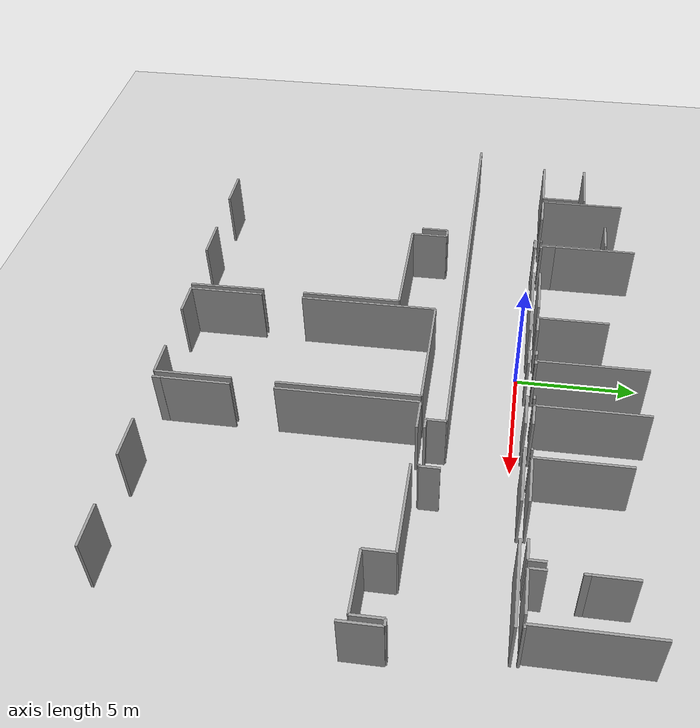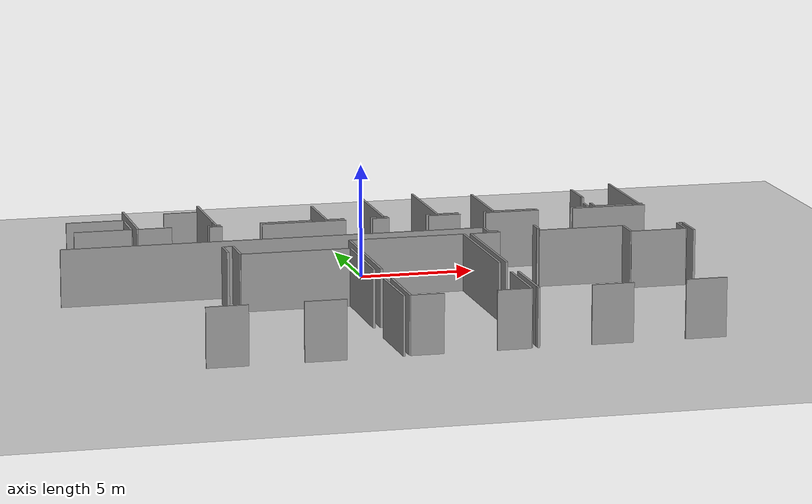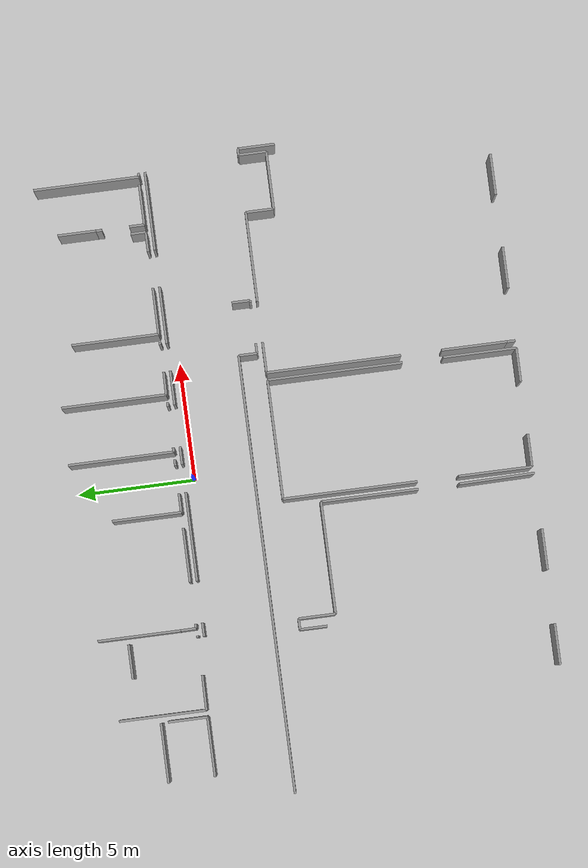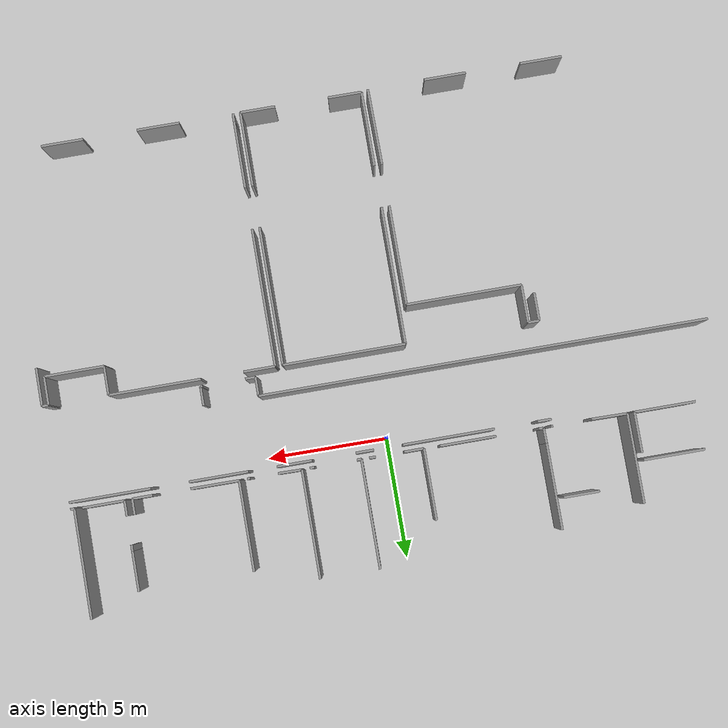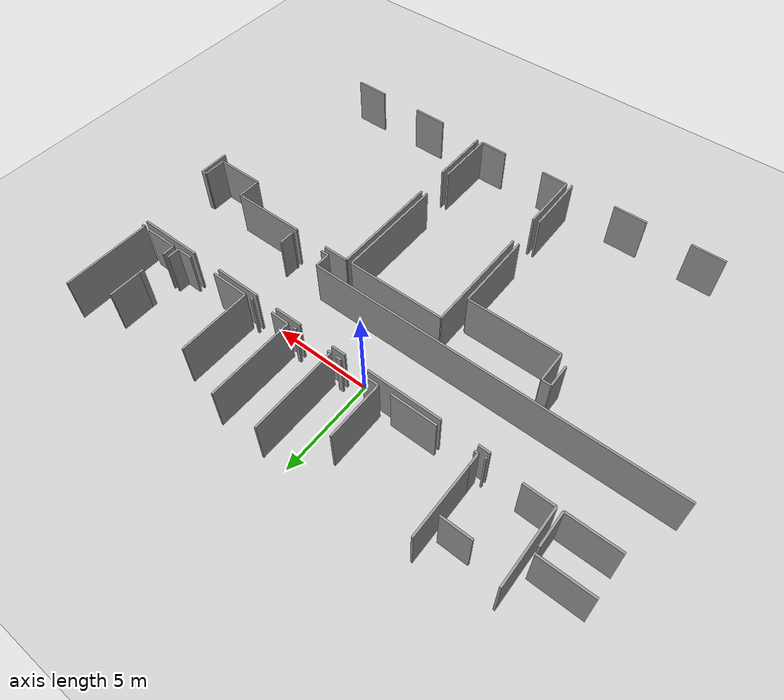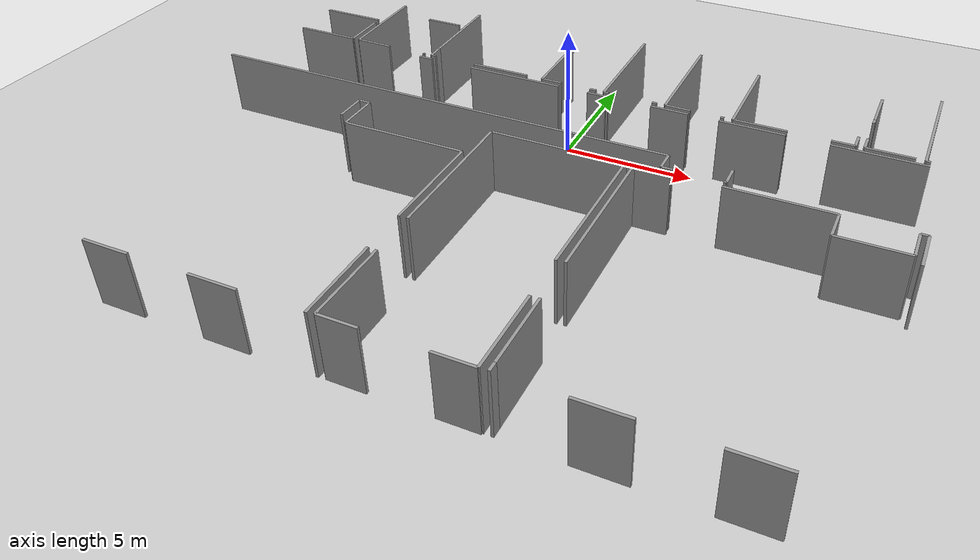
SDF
<sdf version="1.6">
 <world name="default">
  <model name="ground_plane">
   <static>1</static>
   <link name="link">
    <collision name="collision">
     <geometry><plane><normal>0 0 1</normal><size>100 100</size></plane></geometry>
     <surface><friction><ode><mu>100</mu><mu2>50</mu2></ode></friction></surface>
    </collision>
    <visual name="visual">
     <cast_shadows>0</cast_shadows>
     <geometry><plane><normal>0 0 1</normal><size>100 100</size></plane></geometry>
     <material>
      <script><uri>file://media/materials/scripts/gazebo.material</uri><name>Gazebo/Grey</name></script>
     </material>
    </visual>
   </link>
  </model>
  <model name="0510032268_A_40_1_102">
   <static>1</static>
   <link name="Wall_148">
    <collision name="Wall_148_Collision">
     <geometry><box><size>0.570935244492 0.1 2.5</size></box></geometry>
     <pose>0.285467622246 0 1.25 0 0 0</pose>
    </collision>
    <visual name="Wall_148_Visual">
     <pose>0.285467622246 0 1.25 0 0 0</pose>
     <geometry><box><size>0.570935244492 0.1 2.5</size></box></geometry>
     <material>
      <script><uri>file://media/materials/scripts/gazebo.material</uri><name>Gazebo/Grey</name></script>
      <ambient>1 1 1 1</ambient>
     </material>
    </visual>
    <pose>41.2171572579 -14.3330519072 0 0 0 0.0</pose>
   </link>
   <link name="Wall_149">
    <collision name="Wall_149_Collision">
     <geometry><box><size>3.76091055094 0.1 2.5</size></box></geometry>
     <pose>1.88045527547 0 1.25 0 0 0</pose>
    </collision>
    <visual name="Wall_149_Visual">
     <pose>1.88045527547 0 1.25 0 0 0</pose>
     <geometry><box><size>3.76091055094 0.1 2.5</size></box></geometry>
     <material>
      <script><uri>file://media/materials/scripts/gazebo.material</uri><name>Gazebo/Grey</name></script>
      <ambient>1 1 1 1</ambient>
     </material>
    </visual>
    <pose>43.5557445836 -14.3330519072 0 0 0 0.0</pose>
   </link>
   <link name="Wall_150">
    <collision name="Wall_150_Collision">
     <geometry><box><size>0.739790898299 0.1 2.5</size></box></geometry>
     <pose>0.36989544915 0 1.25 0 0 0</pose>
    </collision>
    <visual name="Wall_150_Visual">
     <pose>0.36989544915 0 1.25 0 0 0</pose>
     <geometry><box><size>0.739790898299 0.1 2.5</size></box></geometry>
     <material>
      <script><uri>file://media/materials/scripts/gazebo.material</uri><name>Gazebo/Grey</name></script>
      <ambient>1 1 1 1</ambient>
     </material>
    </visual>
    <pose>48.5146415626 -14.3330519072 0 0 0 0.0</pose>
   </link>
   <link name="Wall_151">
    <collision name="Wall_151_Collision">
     <geometry><box><size>1.44428715618 0.1 2.5</size></box></geometry>
     <pose>0.722143578089 0 1.25 0 0 0</pose>
    </collision>
    <visual name="Wall_151_Visual">
     <pose>0.722143578089 0 1.25 0 0 0</pose>
     <geometry><box><size>1.44428715618 0.1 2.5</size></box></geometry>
     <material>
      <script><uri>file://media/materials/scripts/gazebo.material</uri><name>Gazebo/Grey</name></script>
      <ambient>1 1 1 1</ambient>
     </material>
    </visual>
    <pose>51.044937187 -14.3330519072 0 0 0 0.0</pose>
   </link>
   <link name="Wall_152">
    <collision name="Wall_152_Collision">
     <geometry><box><size>2.43190229225 0.1 2.5</size></box></geometry>
     <pose>1.21595114612 0 1.25 0 0 0</pose>
    </collision>
    <visual name="Wall_152_Visual">
     <pose>1.21595114612 0 1.25 0 0 0</pose>
     <geometry><box><size>2.43190229225 0.1 2.5</size></box></geometry>
     <material>
      <script><uri>file://media/materials/scripts/gazebo.material</uri><name>Gazebo/Grey</name></script>
      <ambient>1 1 1 1</ambient>
     </material>
    </visual>
    <pose>53.6487421523 -14.3330519072 0 0 0 0.0</pose>
   </link>
   <link name="Wall_153">
    <collision name="Wall_153_Collision">
     <geometry><box><size>3.33813662073 0.1 2.5</size></box></geometry>
     <pose>1.66906831036 0 1.25 0 0 0</pose>
    </collision>
    <visual name="Wall_153_Visual">
     <pose>1.66906831036 0 1.25 0 0 0</pose>
     <geometry><box><size>3.33813662073 0.1 2.5</size></box></geometry>
     <material>
      <script><uri>file://media/materials/scripts/gazebo.material</uri><name>Gazebo/Grey</name></script>
      <ambient>1 1 1 1</ambient>
     </material>
    </visual>
    <pose>57.6432575176 -14.3330519072 0 0 0 0.0</pose>
   </link>
   <link name="Wall_160">
    <collision name="Wall_160_Collision">
     <geometry><box><size>0.784861392361 0.1 2.5</size></box></geometry>
     <pose>0.39243069618 0 1.25 0 0 0</pose>
    </collision>
    <visual name="Wall_160_Visual">
     <pose>0.39243069618 0 1.25 0 0 0</pose>
     <geometry><box><size>0.784861392361 0.1 2.5</size></box></geometry>
     <material>
      <script><uri>file://media/materials/scripts/gazebo.material</uri><name>Gazebo/Grey</name></script>
      <ambient>1 1 1 1</ambient>
     </material>
    </visual>
    <pose>55.0084745225 -17.2703785287 0 0 0 -1.57079632679</pose>
   </link>
   <link name="Wall_161">
    <collision name="Wall_161_Collision">
     <geometry><box><size>0.0886174784645 0.1 2.5</size></box></geometry>
     <pose>0.0443087392323 0 1.25 0 0 0</pose>
    </collision>
    <visual name="Wall_161_Visual">
     <pose>0.0443087392323 0 1.25 0 0 0</pose>
     <geometry><box><size>0.0886174784645 0.1 2.5</size></box></geometry>
     <material>
      <script><uri>file://media/materials/scripts/gazebo.material</uri><name>Gazebo/Grey</name></script>
      <ambient>1 1 1 1</ambient>
     </material>
    </visual>
    <pose>55.0084745225 -18.055239921 0 0 0 3.14159265359</pose>
   </link>
   <link name="Wall_162">
    <collision name="Wall_162_Collision">
     <geometry><box><size>0.422646971072 0.1 2.5</size></box></geometry>
     <pose>0.211323485536 0 1.25 0 0 0</pose>
    </collision>
    <visual name="Wall_162_Visual">
     <pose>0.211323485536 0 1.25 0 0 0</pose>
     <geometry><box><size>0.422646971072 0.1 2.5</size></box></geometry>
     <material>
      <script><uri>file://media/materials/scripts/gazebo.material</uri><name>Gazebo/Grey</name></script>
      <ambient>1 1 1 1</ambient>
     </material>
    </visual>
    <pose>53.1717566701 -18.055239921 0 0 0 3.14159265359</pose>
   </link>
   <link name="Wall_163">
    <collision name="Wall_163_Collision">
     <geometry><box><size>0.7806717408 0.1 2.5</size></box></geometry>
     <pose>0.3903358704 0 1.25 0 0 0</pose>
    </collision>
    <visual name="Wall_163_Visual">
     <pose>0.3903358704 0 1.25 0 0 0</pose>
     <geometry><box><size>0.7806717408 0.1 2.5</size></box></geometry>
     <material>
      <script><uri>file://media/materials/scripts/gazebo.material</uri><name>Gazebo/Grey</name></script>
      <ambient>1 1 1 1</ambient>
     </material>
    </visual>
    <pose>52.749109699 -18.055239921 0 0 0 1.57079632679</pose>
   </link>
   <link name="Wall_164">
    <collision name="Wall_164_Collision">
     <geometry><box><size>18.5437786848 0.1 2.5</size></box></geometry>
     <pose>9.27188934242 0 1.25 0 0 0</pose>
    </collision>
    <visual name="Wall_164_Visual">
     <pose>9.27188934242 0 1.25 0 0 0</pose>
     <geometry><box><size>18.5437786848 0.1 2.5</size></box></geometry>
     <material>
      <script><uri>file://media/materials/scripts/gazebo.material</uri><name>Gazebo/Grey</name></script>
      <ambient>1 1 1 1</ambient>
     </material>
    </visual>
    <pose>52.749109699 -17.2745681802 0 0 0 3.14159265359</pose>
   </link>
   <link name="Wall_206">
    <collision name="Wall_206_Collision">
     <geometry><box><size>2.51937713847 0.1 2.5</size></box></geometry>
     <pose>1.25968856923 0 1.25 0 0 0</pose>
    </collision>
    <visual name="Wall_206_Visual">
     <pose>1.25968856923 0 1.25 0 0 0</pose>
     <geometry><box><size>2.51937713847 0.1 2.5</size></box></geometry>
     <material>
      <script><uri>file://media/materials/scripts/gazebo.material</uri><name>Gazebo/Grey</name></script>
      <ambient>1 1 1 1</ambient>
     </material>
    </visual>
    <pose>37.8306492056 -12.0821933461 0 0 0 3.14159265359</pose>
   </link>
   <link name="Wall_212">
    <collision name="Wall_212_Collision">
     <geometry><box><size>1.66379950613 0.1 2.5</size></box></geometry>
     <pose>0.831899753064 0 1.25 0 0 0</pose>
    </collision>
    <visual name="Wall_212_Visual">
     <pose>0.831899753064 0 1.25 0 0 0</pose>
     <geometry><box><size>1.66379950613 0.1 2.5</size></box></geometry>
     <material>
      <script><uri>file://media/materials/scripts/gazebo.material</uri><name>Gazebo/Grey</name></script>
      <ambient>1 1 1 1</ambient>
     </material>
    </visual>
    <pose>37.8472808527 -12.3790238112 0 0 0 -1.57079632679</pose>
   </link>
   <link name="Wall_213">
    <collision name="Wall_213_Collision">
     <geometry><box><size>2.51950409761 0.1 2.5</size></box></geometry>
     <pose>1.2597520488 0 1.25 0 0 0</pose>
    </collision>
    <visual name="Wall_213_Visual">
     <pose>1.2597520488 0 1.25 0 0 0</pose>
     <geometry><box><size>2.51950409761 0.1 2.5</size></box></geometry>
     <material>
      <script><uri>file://media/materials/scripts/gazebo.material</uri><name>Gazebo/Grey</name></script>
      <ambient>1 1 1 1</ambient>
     </material>
    </visual>
    <pose>37.8472808527 -14.0428233173 0 0 0 3.14159265359</pose>
   </link>
   <link name="Wall_219">
    <collision name="Wall_219_Collision">
     <geometry><box><size>1.74467247716 0.1 2.5</size></box></geometry>
     <pose>0.872336238582 0 1.25 0 0 0</pose>
    </collision>
    <visual name="Wall_219_Visual">
     <pose>0.872336238582 0 1.25 0 0 0</pose>
     <geometry><box><size>1.74467247716 0.1 2.5</size></box></geometry>
     <material>
      <script><uri>file://media/materials/scripts/gazebo.material</uri><name>Gazebo/Grey</name></script>
      <ambient>1 1 1 1</ambient>
     </material>
    </visual>
    <pose>43.8768242441 -28.9878182707 0 0 0 3.14159265359</pose>
   </link>
   <link name="Wall_220">
    <collision name="Wall_220_Collision">
     <geometry><box><size>1.74467247716 0.1 2.5</size></box></geometry>
     <pose>0.872336238582 0 1.25 0 0 0</pose>
    </collision>
    <visual name="Wall_220_Visual">
     <pose>0.872336238582 0 1.25 0 0 0</pose>
     <geometry><box><size>1.74467247716 0.1 2.5</size></box></geometry>
     <material>
      <script><uri>file://media/materials/scripts/gazebo.material</uri><name>Gazebo/Grey</name></script>
      <ambient>1 1 1 1</ambient>
     </material>
    </visual>
    <pose>39.8614875802 -28.9878182707 0 0 0 3.14159265359</pose>
   </link>
   <link name="Wall_228">
    <collision name="Wall_228_Collision">
     <geometry><box><size>1.16142219627 0.1 2.5</size></box></geometry>
     <pose>0.580711098133 0 1.25 0 0 0</pose>
    </collision>
    <visual name="Wall_228_Visual">
     <pose>0.580711098133 0 1.25 0 0 0</pose>
     <geometry><box><size>1.16142219627 0.1 2.5</size></box></geometry>
     <material>
      <script><uri>file://media/materials/scripts/gazebo.material</uri><name>Gazebo/Grey</name></script>
      <ambient>1 1 1 1</ambient>
     </material>
    </visual>
    <pose>40.9852029124 -19.5207292533 0 0 0 1.57079632679</pose>
   </link>
   <link name="Wall_229">
    <collision name="Wall_229_Collision">
     <geometry><box><size>0.457306815801 0.1 2.5</size></box></geometry>
     <pose>0.228653407901 0 1.25 0 0 0</pose>
    </collision>
    <visual name="Wall_229_Visual">
     <pose>0.228653407901 0 1.25 0 0 0</pose>
     <geometry><box><size>0.457306815801 0.1 2.5</size></box></geometry>
     <material>
      <script><uri>file://media/materials/scripts/gazebo.material</uri><name>Gazebo/Grey</name></script>
      <ambient>1 1 1 1</ambient>
     </material>
    </visual>
    <pose>40.9852029124 -18.359307057 0 0 0 0.0</pose>
   </link>
   <link name="Wall_230">
    <collision name="Wall_230_Collision">
     <geometry><box><size>1.56794535679 0.1 2.5</size></box></geometry>
     <pose>0.783972678393 0 1.25 0 0 0</pose>
    </collision>
    <visual name="Wall_230_Visual">
     <pose>0.783972678393 0 1.25 0 0 0</pose>
     <geometry><box><size>1.56794535679 0.1 2.5</size></box></geometry>
     <material>
      <script><uri>file://media/materials/scripts/gazebo.material</uri><name>Gazebo/Grey</name></script>
      <ambient>1 1 1 1</ambient>
     </material>
    </visual>
    <pose>41.4425097282 -18.359307057 0 0 0 -1.57079632679</pose>
   </link>
   <link name="Wall_231">
    <collision name="Wall_231_Collision">
     <geometry><box><size>4.75461972564 0.1 2.5</size></box></geometry>
     <pose>2.37730986282 0 1.25 0 0 0</pose>
    </collision>
    <visual name="Wall_231_Visual">
     <pose>2.37730986282 0 1.25 0 0 0</pose>
     <geometry><box><size>4.75461972564 0.1 2.5</size></box></geometry>
     <material>
      <script><uri>file://media/materials/scripts/gazebo.material</uri><name>Gazebo/Grey</name></script>
      <ambient>1 1 1 1</ambient>
     </material>
    </visual>
    <pose>41.4425097282 -19.9272524138 0 0 0 0.0</pose>
   </link>
   <link name="Wall_232">
    <collision name="Wall_232_Collision">
     <geometry><box><size>4.13340866242 0.1 2.5</size></box></geometry>
     <pose>2.06670433121 0 1.25 0 0 0</pose>
    </collision>
    <visual name="Wall_232_Visual">
     <pose>2.06670433121 0 1.25 0 0 0</pose>
     <geometry><box><size>4.13340866242 0.1 2.5</size></box></geometry>
     <material>
      <script><uri>file://media/materials/scripts/gazebo.material</uri><name>Gazebo/Grey</name></script>
      <ambient>1 1 1 1</ambient>
     </material>
    </visual>
    <pose>46.1971294539 -19.9272524138 0 0 0 -1.57079632679</pose>
   </link>
   <link name="Wall_233">
    <collision name="Wall_233_Collision">
     <geometry><box><size>3.18720034093 0.1 2.5</size></box></geometry>
     <pose>1.59360017047 0 1.25 0 0 0</pose>
    </collision>
    <visual name="Wall_233_Visual">
     <pose>1.59360017047 0 1.25 0 0 0</pose>
     <geometry><box><size>3.18720034093 0.1 2.5</size></box></geometry>
     <material>
      <script><uri>file://media/materials/scripts/gazebo.material</uri><name>Gazebo/Grey</name></script>
      <ambient>1 1 1 1</ambient>
     </material>
    </visual>
    <pose>46.1971294539 -25.8008899836 0 0 0 -1.55773038247</pose>
   </link>
   <link name="Wall_234">
    <collision name="Wall_234_Collision">
     <geometry><box><size>3.1140537418 0.1 2.5</size></box></geometry>
     <pose>1.5570268709 0 1.25 0 0 0</pose>
    </collision>
    <visual name="Wall_234_Visual">
     <pose>1.5570268709 0 1.25 0 0 0</pose>
     <geometry><box><size>3.1140537418 0.1 2.5</size></box></geometry>
     <material>
      <script><uri>file://media/materials/scripts/gazebo.material</uri><name>Gazebo/Grey</name></script>
      <ambient>1 1 1 1</ambient>
     </material>
    </visual>
    <pose>46.5150351359 -28.9176098673 0 0 0 1.57079632679</pose>
   </link>
   <link name="Wall_235">
    <collision name="Wall_235_Collision">
     <geometry><box><size>5.70516279335 0.1 2.5</size></box></geometry>
     <pose>2.85258139668 0 1.25 0 0 0</pose>
    </collision>
    <visual name="Wall_235_Visual">
     <pose>2.85258139668 0 1.25 0 0 0</pose>
     <geometry><box><size>5.70516279335 0.1 2.5</size></box></geometry>
     <material>
      <script><uri>file://media/materials/scripts/gazebo.material</uri><name>Gazebo/Grey</name></script>
      <ambient>1 1 1 1</ambient>
     </material>
    </visual>
    <pose>46.5150351359 -24.0563444655 0 0 0 1.57079632679</pose>
   </link>
   <link name="Wall_236">
    <collision name="Wall_236_Collision">
     <geometry><box><size>5.06160692181 0.1 2.5</size></box></geometry>
     <pose>2.53080346091 0 1.25 0 0 0</pose>
    </collision>
    <visual name="Wall_236_Visual">
     <pose>2.53080346091 0 1.25 0 0 0</pose>
     <geometry><box><size>5.06160692181 0.1 2.5</size></box></geometry>
     <material>
      <script><uri>file://media/materials/scripts/gazebo.material</uri><name>Gazebo/Grey</name></script>
      <ambient>1 1 1 1</ambient>
     </material>
    </visual>
    <pose>46.5150351359 -18.3511816722 0 0 0 0.0</pose>
   </link>
   <link name="Wall_237">
    <collision name="Wall_237_Collision">
     <geometry><box><size>5.72903111134 0.1 2.5</size></box></geometry>
     <pose>2.86451555567 0 1.25 0 0 0</pose>
    </collision>
    <visual name="Wall_237_Visual">
     <pose>2.86451555567 0 1.25 0 0 0</pose>
     <geometry><box><size>5.72903111134 0.1 2.5</size></box></geometry>
     <material>
      <script><uri>file://media/materials/scripts/gazebo.material</uri><name>Gazebo/Grey</name></script>
      <ambient>1 1 1 1</ambient>
     </material>
    </visual>
    <pose>51.5766420578 -18.3511816722 0 0 0 -1.57079632679</pose>
   </link>
   <link name="Wall_238">
    <collision name="Wall_238_Collision">
     <geometry><box><size>3.10783274403 0.1 2.5</size></box></geometry>
     <pose>1.55391637202 0 1.25 0 0 0</pose>
    </collision>
    <visual name="Wall_238_Visual">
     <pose>1.55391637202 0 1.25 0 0 0</pose>
     <geometry><box><size>3.10783274403 0.1 2.5</size></box></geometry>
     <material>
      <script><uri>file://media/materials/scripts/gazebo.material</uri><name>Gazebo/Grey</name></script>
      <ambient>1 1 1 1</ambient>
     </material>
    </visual>
    <pose>51.5766420578 -25.8144746113 0 0 0 -1.57079632679</pose>
   </link>
   <link name="Wall_239">
    <collision name="Wall_239_Collision">
     <geometry><box><size>1.44479499273 0.1 2.5</size></box></geometry>
     <pose>0.722397496366 0 1.25 0 0 0</pose>
    </collision>
    <visual name="Wall_239_Visual">
     <pose>0.722397496366 0 1.25 0 0 0</pose>
     <geometry><box><size>1.44479499273 0.1 2.5</size></box></geometry>
     <material>
      <script><uri>file://media/materials/scripts/gazebo.material</uri><name>Gazebo/Grey</name></script>
      <ambient>1 1 1 1</ambient>
     </material>
    </visual>
    <pose>51.5766420578 -28.9223073554 0 0 0 3.14159265359</pose>
   </link>
   <link name="Wall_240">
    <collision name="Wall_240_Collision">
     <geometry><box><size>1.39617754525 0.1 2.5</size></box></geometry>
     <pose>0.698088772627 0 1.25 0 0 0</pose>
    </collision>
    <visual name="Wall_240_Visual">
     <pose>0.698088772627 0 1.25 0 0 0</pose>
     <geometry><box><size>1.39617754525 0.1 2.5</size></box></geometry>
     <material>
      <script><uri>file://media/materials/scripts/gazebo.material</uri><name>Gazebo/Grey</name></script>
      <ambient>1 1 1 1</ambient>
     </material>
    </visual>
    <pose>47.9112047787 -28.9223073554 0 0 0 3.13822811232</pose>
   </link>
   <link name="Wall_241">
    <collision name="Wall_241_Collision">
     <geometry><box><size>2.77761202557 0.1 2.5</size></box></geometry>
     <pose>1.38880601278 0 1.25 0 0 0</pose>
    </collision>
    <visual name="Wall_241_Visual">
     <pose>1.38880601278 0 1.25 0 0 0</pose>
     <geometry><box><size>2.77761202557 0.1 2.5</size></box></geometry>
     <material>
      <script><uri>file://media/materials/scripts/gazebo.material</uri><name>Gazebo/Grey</name></script>
      <ambient>1 1 1 1</ambient>
     </material>
    </visual>
    <pose>51.8874380281 -28.5759628264 0 0 0 1.57079632679</pose>
   </link>
   <link name="Wall_242">
    <collision name="Wall_242_Collision">
     <geometry><box><size>5.7089715675 0.1 2.5</size></box></geometry>
     <pose>2.85448578375 0 1.25 0 0 0</pose>
    </collision>
    <visual name="Wall_242_Visual">
     <pose>2.85448578375 0 1.25 0 0 0</pose>
     <geometry><box><size>5.7089715675 0.1 2.5</size></box></geometry>
     <material>
      <script><uri>file://media/materials/scripts/gazebo.material</uri><name>Gazebo/Grey</name></script>
      <ambient>1 1 1 1</ambient>
     </material>
    </visual>
    <pose>51.8874380281 -24.0563444655 0 0 0 1.57079632679</pose>
   </link>
   <link name="Wall_243">
    <collision name="Wall_243_Collision">
     <geometry><box><size>1.30729824606 0.1 2.5</size></box></geometry>
     <pose>0.65364912303 0 1.25 0 0 0</pose>
    </collision>
    <visual name="Wall_243_Visual">
     <pose>0.65364912303 0 1.25 0 0 0</pose>
     <geometry><box><size>1.30729824606 0.1 2.5</size></box></geometry>
     <material>
      <script><uri>file://media/materials/scripts/gazebo.material</uri><name>Gazebo/Grey</name></script>
      <ambient>1 1 1 1</ambient>
     </material>
    </visual>
    <pose>51.8874380281 -18.347372898 0 0 0 0.0</pose>
   </link>
   <link name="Wall_244">
    <collision name="Wall_244_Collision">
     <geometry><box><size>3.79379296773 0.1 2.5</size></box></geometry>
     <pose>1.89689648387 0 1.25 0 0 0</pose>
    </collision>
    <visual name="Wall_244_Visual">
     <pose>1.89689648387 0 1.25 0 0 0</pose>
     <geometry><box><size>3.79379296773 0.1 2.5</size></box></geometry>
     <material>
      <script><uri>file://media/materials/scripts/gazebo.material</uri><name>Gazebo/Grey</name></script>
      <ambient>1 1 1 1</ambient>
     </material>
    </visual>
    <pose>54.9443601577 -18.347372898 0 0 0 0.0</pose>
   </link>
   <link name="Wall_245">
    <collision name="Wall_245_Collision">
     <geometry><box><size>1.18897232926 0.1 2.5</size></box></geometry>
     <pose>0.594486164628 0 1.25 0 0 0</pose>
    </collision>
    <visual name="Wall_245_Visual">
     <pose>0.594486164628 0 1.25 0 0 0</pose>
     <geometry><box><size>1.18897232926 0.1 2.5</size></box></geometry>
     <material>
      <script><uri>file://media/materials/scripts/gazebo.material</uri><name>Gazebo/Grey</name></script>
      <ambient>1 1 1 1</ambient>
     </material>
    </visual>
    <pose>58.7381531254 -18.347372898 0 0 0 -1.57079632679</pose>
   </link>
   <link name="Wall_246">
    <collision name="Wall_246_Collision">
     <geometry><box><size>2.46275336283 0.1 2.5</size></box></geometry>
     <pose>1.23137668142 0 1.25 0 0 0</pose>
    </collision>
    <visual name="Wall_246_Visual">
     <pose>1.23137668142 0 1.25 0 0 0</pose>
     <geometry><box><size>2.46275336283 0.1 2.5</size></box></geometry>
     <material>
      <script><uri>file://media/materials/scripts/gazebo.material</uri><name>Gazebo/Grey</name></script>
      <ambient>1 1 1 1</ambient>
     </material>
    </visual>
    <pose>58.7381531254 -19.5363452273 0 0 0 0.0</pose>
   </link>
   <link name="Wall_247">
    <collision name="Wall_247_Collision">
     <geometry><box><size>1.1788155982 0.1 2.5</size></box></geometry>
     <pose>0.5894077991 0 1.25 0 0 0</pose>
    </collision>
    <visual name="Wall_247_Visual">
     <pose>0.5894077991 0 1.25 0 0 0</pose>
     <geometry><box><size>1.1788155982 0.1 2.5</size></box></geometry>
     <material>
      <script><uri>file://media/materials/scripts/gazebo.material</uri><name>Gazebo/Grey</name></script>
      <ambient>1 1 1 1</ambient>
     </material>
    </visual>
    <pose>61.2009064882 -19.5363452273 0 0 0 1.57079632679</pose>
   </link>
   <link name="Wall_248">
    <collision name="Wall_248_Collision">
     <geometry><box><size>0.2625514978 0.1 2.5</size></box></geometry>
     <pose>0.1312757489 0 1.25 0 0 0</pose>
    </collision>
    <visual name="Wall_248_Visual">
     <pose>0.1312757489 0 1.25 0 0 0</pose>
     <geometry><box><size>0.2625514978 0.1 2.5</size></box></geometry>
     <material>
      <script><uri>file://media/materials/scripts/gazebo.material</uri><name>Gazebo/Grey</name></script>
      <ambient>1 1 1 1</ambient>
     </material>
    </visual>
    <pose>61.2009064882 -18.3575296291 0 0 0 0.0</pose>
   </link>
   <link name="Wall_249">
    <collision name="Wall_249_Collision">
     <geometry><box><size>1.57023062127 0.1 2.5</size></box></geometry>
     <pose>0.785115310637 0 1.25 0 0 0</pose>
    </collision>
    <visual name="Wall_249_Visual">
     <pose>0.785115310637 0 1.25 0 0 0</pose>
     <geometry><box><size>1.57023062127 0.1 2.5</size></box></geometry>
     <material>
      <script><uri>file://media/materials/scripts/gazebo.material</uri><name>Gazebo/Grey</name></script>
      <ambient>1 1 1 1</ambient>
     </material>
    </visual>
    <pose>61.463457986 -18.3575296291 0 0 0 -1.57079632679</pose>
   </link>
   <link name="Wall_254">
    <collision name="Wall_254_Collision">
     <geometry><box><size>1.74848125131 0.1 2.5</size></box></geometry>
     <pose>0.874240625655 0 1.25 0 0 0</pose>
    </collision>
    <visual name="Wall_254_Visual">
     <pose>0.874240625655 0 1.25 0 0 0</pose>
     <geometry><box><size>1.74848125131 0.1 2.5</size></box></geometry>
     <material>
      <script><uri>file://media/materials/scripts/gazebo.material</uri><name>Gazebo/Grey</name></script>
      <ambient>1 1 1 1</ambient>
     </material>
    </visual>
    <pose>59.874183494 -28.9198951318 0 0 0 3.14159265359</pose>
   </link>
   <link name="Wall_255">
    <collision name="Wall_255_Collision">
     <geometry><box><size>1.77209565101 0.1 2.5</size></box></geometry>
     <pose>0.886047825507 0 1.25 0 0 0</pose>
    </collision>
    <visual name="Wall_255_Visual">
     <pose>0.886047825507 0 1.25 0 0 0</pose>
     <geometry><box><size>1.77209565101 0.1 2.5</size></box></geometry>
     <material>
      <script><uri>file://media/materials/scripts/gazebo.material</uri><name>Gazebo/Grey</name></script>
      <ambient>1 1 1 1</ambient>
     </material>
    </visual>
    <pose>55.8935066749 -28.9198951318 0 0 0 3.14159265359</pose>
   </link>
   <link name="Wall_256">
    <collision name="Wall_256_Collision">
     <geometry><box><size>0.343942639116 0.1 2.5</size></box></geometry>
     <pose>0.171971319558 0 1.25 0 0 0</pose>
    </collision>
    <visual name="Wall_256_Visual">
     <pose>0.171971319558 0 1.25 0 0 0</pose>
     <geometry><box><size>0.343942639116 0.1 2.5</size></box></geometry>
     <material>
      <script><uri>file://media/materials/scripts/gazebo.material</uri><name>Gazebo/Grey</name></script>
      <ambient>1 1 1 1</ambient>
     </material>
    </visual>
    <pose>51.8847718862 -28.9198951318 0 0 0 1.56304454408</pose>
   </link>
   <link name="Wall_257">
    <collision name="Wall_257_Collision">
     <geometry><box><size>3.68549682285 0.1 2.5</size></box></geometry>
     <pose>1.84274841142 0 1.25 0 0 0</pose>
    </collision>
    <visual name="Wall_257_Visual">
     <pose>1.84274841142 0 1.25 0 0 0</pose>
     <geometry><box><size>3.68549682285 0.1 2.5</size></box></geometry>
     <material>
      <script><uri>file://media/materials/scripts/gazebo.material</uri><name>Gazebo/Grey</name></script>
      <ambient>1 1 1 1</ambient>
     </material>
    </visual>
    <pose>38.1373824834 -14.035205769 0 0 0 1.57079632679</pose>
   </link>
   <link name="Wall_260">
    <collision name="Wall_260_Collision">
     <geometry><box><size>1.47336079883 0.1 2.5</size></box></geometry>
     <pose>0.736680399413 0 1.25 0 0 0</pose>
    </collision>
    <visual name="Wall_260_Visual">
     <pose>0.736680399413 0 1.25 0 0 0</pose>
     <geometry><box><size>1.47336079883 0.1 2.5</size></box></geometry>
     <material>
      <script><uri>file://media/materials/scripts/gazebo.material</uri><name>Gazebo/Grey</name></script>
      <ambient>1 1 1 1</ambient>
     </material>
    </visual>
    <pose>39.8100691293 -11.1465044975 0 0 0 0.0</pose>
   </link>
   <link name="Wall_262">
    <collision name="Wall_262_Collision">
     <geometry><box><size>0.0812538484489 0.1 2.5</size></box></geometry>
     <pose>0.0406269242244 0 1.25 0 0 0</pose>
    </collision>
    <visual name="Wall_262_Visual">
     <pose>0.0406269242244 0 1.25 0 0 0</pose>
     <geometry><box><size>0.0812538484489 0.1 2.5</size></box></geometry>
     <material>
      <script><uri>file://media/materials/scripts/gazebo.material</uri><name>Gazebo/Grey</name></script>
      <ambient>1 1 1 1</ambient>
     </material>
    </visual>
    <pose>41.2834299281 -14.0564079451 0 0 0 3.14159265359</pose>
   </link>
   <link name="Wall_263">
    <collision name="Wall_263_Collision">
     <geometry><box><size>1.48062232353 0.1 2.5</size></box></geometry>
     <pose>0.740311161764 0 1.25 0 0 0</pose>
    </collision>
    <visual name="Wall_263_Visual">
     <pose>0.740311161764 0 1.25 0 0 0</pose>
     <geometry><box><size>1.48062232353 0.1 2.5</size></box></geometry>
     <material>
      <script><uri>file://media/materials/scripts/gazebo.material</uri><name>Gazebo/Grey</name></script>
      <ambient>1 1 1 1</ambient>
     </material>
    </visual>
    <pose>39.617852994 -14.0564079451 0 0 0 3.12727239081</pose>
   </link>
   <link name="Wall_264">
    <collision name="Wall_264_Collision">
     <geometry><box><size>3.52057690232 0.1 2.5</size></box></geometry>
     <pose>1.76028845116 0 1.25 0 0 0</pose>
    </collision>
    <visual name="Wall_264_Visual">
     <pose>1.76028845116 0 1.25 0 0 0</pose>
     <geometry><box><size>3.52057690232 0.1 2.5</size></box></geometry>
     <material>
      <script><uri>file://media/materials/scripts/gazebo.material</uri><name>Gazebo/Grey</name></script>
      <ambient>1 1 1 1</ambient>
     </material>
    </visual>
    <pose>41.5803873523 -13.4014257511 0 0 0 1.57079632679</pose>
   </link>
   <link name="Wall_269">
    <collision name="Wall_269_Collision">
     <geometry><box><size>2.30291180783 0.1 2.5</size></box></geometry>
     <pose>1.15145590392 0 1.25 0 0 0</pose>
    </collision>
    <visual name="Wall_269_Visual">
     <pose>1.15145590392 0 1.25 0 0 0</pose>
     <geometry><box><size>2.30291180783 0.1 2.5</size></box></geometry>
     <material>
      <script><uri>file://media/materials/scripts/gazebo.material</uri><name>Gazebo/Grey</name></script>
      <ambient>1 1 1 1</ambient>
     </material>
    </visual>
    <pose>45.8413899486 -14.0364753604 0 0 0 3.14159265359</pose>
   </link>
   <link name="Wall_270">
    <collision name="Wall_270_Collision">
     <geometry><box><size>0.186756892294 0.1 2.5</size></box></geometry>
     <pose>0.0933784461471 0 1.25 0 0 0</pose>
    </collision>
    <visual name="Wall_270_Visual">
     <pose>0.0933784461471 0 1.25 0 0 0</pose>
     <geometry><box><size>0.186756892294 0.1 2.5</size></box></geometry>
     <material>
      <script><uri>file://media/materials/scripts/gazebo.material</uri><name>Gazebo/Grey</name></script>
      <ambient>1 1 1 1</ambient>
     </material>
    </visual>
    <pose>41.7773009757 -14.0364753604 0 0 0 3.14159265359</pose>
   </link>
   <link name="Wall_271">
    <collision name="Wall_271_Collision">
     <geometry><box><size>0.63513082545 0.1 2.5</size></box></geometry>
     <pose>0.317565412725 0 1.25 0 0 0</pose>
    </collision>
    <visual name="Wall_271_Visual">
     <pose>0.317565412725 0 1.25 0 0 0</pose>
     <geometry><box><size>0.63513082545 0.1 2.5</size></box></geometry>
     <material>
      <script><uri>file://media/materials/scripts/gazebo.material</uri><name>Gazebo/Grey</name></script>
      <ambient>1 1 1 1</ambient>
     </material>
    </visual>
    <pose>41.5905440834 -14.0364753604 0 0 0 1.58678856587</pose>
   </link>
   <link name="Wall_272">
    <collision name="Wall_272_Collision">
     <geometry><box><size>2.93415264297 0.1 2.5</size></box></geometry>
     <pose>1.46707632149 0 1.25 0 0 0</pose>
    </collision>
    <visual name="Wall_272_Visual">
     <pose>1.46707632149 0 1.25 0 0 0</pose>
     <geometry><box><size>2.93415264297 0.1 2.5</size></box></geometry>
     <material>
      <script><uri>file://media/materials/scripts/gazebo.material</uri><name>Gazebo/Grey</name></script>
      <ambient>1 1 1 1</ambient>
     </material>
    </visual>
    <pose>46.5037357726 -14.0420615625 0 0 0 1.57079632679</pose>
   </link>
   <link name="Wall_275">
    <collision name="Wall_275_Collision">
     <geometry><box><size>0.259504478484 0.1 2.5</size></box></geometry>
     <pose>0.129752239242 0 1.25 0 0 0</pose>
    </collision>
    <visual name="Wall_275_Visual">
     <pose>0.129752239242 0 1.25 0 0 0</pose>
     <geometry><box><size>0.259504478484 0.1 2.5</size></box></geometry>
     <material>
      <script><uri>file://media/materials/scripts/gazebo.material</uri><name>Gazebo/Grey</name></script>
      <ambient>1 1 1 1</ambient>
     </material>
    </visual>
    <pose>48.7485002952 -14.0423154808 0 0 0 3.14159265359</pose>
   </link>
   <link name="Wall_276">
    <collision name="Wall_276_Collision">
     <geometry><box><size>0.805301853643 0.1 2.5</size></box></geometry>
     <pose>0.402650926821 0 1.25 0 0 0</pose>
    </collision>
    <visual name="Wall_276_Visual">
     <pose>0.402650926821 0 1.25 0 0 0</pose>
     <geometry><box><size>0.805301853643 0.1 2.5</size></box></geometry>
     <material>
      <script><uri>file://media/materials/scripts/gazebo.material</uri><name>Gazebo/Grey</name></script>
      <ambient>1 1 1 1</ambient>
     </material>
    </visual>
    <pose>47.3090375863 -14.0423154808 0 0 0 3.14127734539</pose>
   </link>
   <link name="Wall_277">
    <collision name="Wall_277_Collision">
     <geometry><box><size>4.48597418921 0.1 2.5</size></box></geometry>
     <pose>2.2429870946 0 1.25 0 0 0</pose>
    </collision>
    <visual name="Wall_277_Visual">
     <pose>2.2429870946 0 1.25 0 0 0</pose>
     <geometry><box><size>4.48597418921 0.1 2.5</size></box></geometry>
     <material>
      <script><uri>file://media/materials/scripts/gazebo.material</uri><name>Gazebo/Grey</name></script>
      <ambient>1 1 1 1</ambient>
     </material>
    </visual>
    <pose>49.0741504847 -14.055392272 0 0 0 1.57079632679</pose>
   </link>
   <link name="Wall_281">
    <collision name="Wall_281_Collision">
     <geometry><box><size>0.182313322457 0.1 2.5</size></box></geometry>
     <pose>0.0911566612286 0 1.25 0 0 0</pose>
    </collision>
    <visual name="Wall_281_Visual">
     <pose>0.0911566612286 0 1.25 0 0 0</pose>
     <geometry><box><size>0.182313322457 0.1 2.5</size></box></geometry>
     <material>
      <script><uri>file://media/materials/scripts/gazebo.material</uri><name>Gazebo/Grey</name></script>
      <ambient>1 1 1 1</ambient>
     </material>
    </visual>
    <pose>51.183703525 -14.0476477646 0 0 0 3.14159265359</pose>
   </link>
   <link name="Wall_282">
    <collision name="Wall_282_Collision">
     <geometry><box><size>0.178038271988 0.1 2.5</size></box></geometry>
     <pose>0.089019135994 0 1.25 0 0 0</pose>
    </collision>
    <visual name="Wall_282_Visual">
     <pose>0.089019135994 0 1.25 0 0 0</pose>
     <geometry><box><size>0.178038271988 0.1 2.5</size></box></geometry>
     <material>
      <script><uri>file://media/materials/scripts/gazebo.material</uri><name>Gazebo/Grey</name></script>
      <ambient>1 1 1 1</ambient>
     </material>
    </visual>
    <pose>49.2520202373 -14.0476477646 0 0 0 -3.09807980801</pose>
   </link>
   <link name="Wall_283">
    <collision name="Wall_283_Collision">
     <geometry><box><size>4.44699773378 0.1 2.5</size></box></geometry>
     <pose>2.22349886689 0 1.25 0 0 0</pose>
    </collision>
    <visual name="Wall_283_Visual">
     <pose>2.22349886689 0 1.25 0 0 0</pose>
     <geometry><box><size>4.44699773378 0.1 2.5</size></box></geometry>
     <material>
      <script><uri>file://media/materials/scripts/gazebo.material</uri><name>Gazebo/Grey</name></script>
      <ambient>1 1 1 1</ambient>
     </material>
    </visual>
    <pose>51.5097345919 -14.0392684614 0 0 0 1.57079632679</pose>
   </link>
   <link name="Wall_286">
    <collision name="Wall_286_Collision">
     <geometry><box><size>0.122388609226 0.1 2.5</size></box></geometry>
     <pose>0.0611943046131 0 1.25 0 0 0</pose>
    </collision>
    <visual name="Wall_286_Visual">
     <pose>0.0611943046131 0 1.25 0 0 0</pose>
     <geometry><box><size>0.122388609226 0.1 2.5</size></box></geometry>
     <material>
      <script><uri>file://media/materials/scripts/gazebo.material</uri><name>Gazebo/Grey</name></script>
      <ambient>1 1 1 1</ambient>
     </material>
    </visual>
    <pose>53.7518329726 -14.0548844354 0 0 0 3.14159265359</pose>
   </link>
   <link name="Wall_287">
    <collision name="Wall_287_Collision">
     <geometry><box><size>0.971362939311 0.1 2.5</size></box></geometry>
     <pose>0.485681469656 0 1.25 0 0 0</pose>
    </collision>
    <visual name="Wall_287_Visual">
     <pose>0.485681469656 0 1.25 0 0 0</pose>
     <geometry><box><size>0.971362939311 0.1 2.5</size></box></geometry>
     <material>
      <script><uri>file://media/materials/scripts/gazebo.material</uri><name>Gazebo/Grey</name></script>
      <ambient>1 1 1 1</ambient>
     </material>
    </visual>
    <pose>52.4809719992 -14.0548844354 0 0 0 3.12551560751</pose>
   </link>
   <link name="Wall_288">
    <collision name="Wall_288_Collision">
     <geometry><box><size>3.69781185925 0.1 2.5</size></box></geometry>
     <pose>1.84890592963 0 1.25 0 0 0</pose>
    </collision>
    <visual name="Wall_288_Visual">
     <pose>1.84890592963 0 1.25 0 0 0</pose>
     <geometry><box><size>3.69781185925 0.1 2.5</size></box></geometry>
     <material>
      <script><uri>file://media/materials/scripts/gazebo.material</uri><name>Gazebo/Grey</name></script>
      <ambient>1 1 1 1</ambient>
     </material>
    </visual>
    <pose>54.082942405 -14.0416806851 0 0 0 1.57079632679</pose>
   </link>
   <link name="Wall_293">
    <collision name="Wall_293_Collision">
     <geometry><box><size>0.639620138259 0.1 2.5</size></box></geometry>
     <pose>0.319810069129 0 1.25 0 0 0</pose>
    </collision>
    <visual name="Wall_293_Visual">
     <pose>0.319810069129 0 1.25 0 0 0</pose>
     <geometry><box><size>0.639620138259 0.1 2.5</size></box></geometry>
     <material>
      <script><uri>file://media/materials/scripts/gazebo.material</uri><name>Gazebo/Grey</name></script>
      <ambient>1 1 1 1</ambient>
     </material>
    </visual>
    <pose>58.4519872279 -13.4080276263 0 0 0 -1.57079632679</pose>
   </link>
   <link name="Wall_294">
    <collision name="Wall_294_Collision">
     <geometry><box><size>0.830693641252 0.1 2.5</size></box></geometry>
     <pose>0.415346820626 0 1.25 0 0 0</pose>
    </collision>
    <visual name="Wall_294_Visual">
     <pose>0.415346820626 0 1.25 0 0 0</pose>
     <geometry><box><size>0.830693641252 0.1 2.5</size></box></geometry>
     <material>
      <script><uri>file://media/materials/scripts/gazebo.material</uri><name>Gazebo/Grey</name></script>
      <ambient>1 1 1 1</ambient>
     </material>
    </visual>
    <pose>58.4519872279 -14.0476477646 0 0 0 3.14159265359</pose>
   </link>
   <link name="Wall_295">
    <collision name="Wall_295_Collision">
     <geometry><box><size>1.98387246743 0.1 2.5</size></box></geometry>
     <pose>0.991936233714 0 1.25 0 0 0</pose>
    </collision>
    <visual name="Wall_295_Visual">
     <pose>0.991936233714 0 1.25 0 0 0</pose>
     <geometry><box><size>1.98387246743 0.1 2.5</size></box></geometry>
     <material>
      <script><uri>file://media/materials/scripts/gazebo.material</uri><name>Gazebo/Grey</name></script>
      <ambient>1 1 1 1</ambient>
     </material>
    </visual>
    <pose>56.0668058985 -14.0476477646 0 0 0 3.13858485516</pose>
   </link>
   <link name="Wall_296">
    <collision name="Wall_296_Collision">
     <geometry><box><size>1.62520392812 0.1 2.5</size></box></geometry>
     <pose>0.812601964058 0 1.25 0 0 0</pose>
    </collision>
    <visual name="Wall_296_Visual">
     <pose>0.812601964058 0 1.25 0 0 0</pose>
     <geometry><box><size>1.62520392812 0.1 2.5</size></box></geometry>
     <material>
      <script><uri>file://media/materials/scripts/gazebo.material</uri><name>Gazebo/Grey</name></script>
      <ambient>1 1 1 1</ambient>
     </material>
    </visual>
    <pose>58.7691311551 -11.9707232227 0 0 0 1.57079632679</pose>
   </link>
   <link name="Wall_299">
    <collision name="Wall_299_Collision">
     <geometry><box><size>1.72004240435 0.1 2.5</size></box></geometry>
     <pose>0.860021202176 0 1.25 0 0 0</pose>
    </collision>
    <visual name="Wall_299_Visual">
     <pose>0.860021202176 0 1.25 0 0 0</pose>
     <geometry><box><size>1.72004240435 0.1 2.5</size></box></geometry>
     <material>
      <script><uri>file://media/materials/scripts/gazebo.material</uri><name>Gazebo/Grey</name></script>
      <ambient>1 1 1 1</ambient>
     </material>
    </visual>
    <pose>60.486888295 -14.0313969949 0 0 0 3.14159265359</pose>
   </link>
   <link name="Wall_300">
    <collision name="Wall_300_Collision">
     <geometry><box><size>0.637715751185 0.1 2.5</size></box></geometry>
     <pose>0.318857875593 0 1.25 0 0 0</pose>
    </collision>
    <visual name="Wall_300_Visual">
     <pose>0.318857875593 0 1.25 0 0 0</pose>
     <geometry><box><size>0.637715751185 0.1 2.5</size></box></geometry>
     <material>
      <script><uri>file://media/materials/scripts/gazebo.material</uri><name>Gazebo/Grey</name></script>
      <ambient>1 1 1 1</ambient>
     </material>
    </visual>
    <pose>58.7668458907 -14.0313969949 0 0 0 1.57079632679</pose>
   </link>
   <link name="Wall_301">
    <collision name="Wall_301_Collision">
     <geometry><box><size>0.255959824484 0.1 2.5</size></box></geometry>
     <pose>0.127979912242 0 1.25 0 0 0</pose>
    </collision>
    <visual name="Wall_301_Visual">
     <pose>0.127979912242 0 1.25 0 0 0</pose>
     <geometry><box><size>0.255959824484 0.1 2.5</size></box></geometry>
     <material>
      <script><uri>file://media/materials/scripts/gazebo.material</uri><name>Gazebo/Grey</name></script>
      <ambient>1 1 1 1</ambient>
     </material>
    </visual>
    <pose>58.7668458907 -12.2266728453 0 0 0 1.56186799262</pose>
   </link>
   <link name="Wall_302">
    <collision name="Wall_302_Collision">
     <geometry><box><size>4.48673594404 0.1 2.5</size></box></geometry>
     <pose>2.24336797202 0 1.25 0 0 0</pose>
    </collision>
    <visual name="Wall_302_Visual">
     <pose>2.24336797202 0 1.25 0 0 0</pose>
     <geometry><box><size>4.48673594404 0.1 2.5</size></box></geometry>
     <material>
      <script><uri>file://media/materials/scripts/gazebo.material</uri><name>Gazebo/Grey</name></script>
      <ambient>1 1 1 1</ambient>
     </material>
    </visual>
    <pose>60.8146967898 -14.055392272 0 0 0 1.57079632679</pose>
   </link>
   <link name="Wall_307">
    <collision name="Wall_307_Collision">
     <geometry><box><size>0.157839622159 0.1 2.5</size></box></geometry>
     <pose>0.0789198110795 0 1.25 0 0 0</pose>
    </collision>
    <visual name="Wall_307_Visual">
     <pose>0.0789198110795 0 1.25 0 0 0</pose>
     <geometry><box><size>0.157839622159 0.1 2.5</size></box></geometry>
     <material>
      <script><uri>file://media/materials/scripts/gazebo.material</uri><name>Gazebo/Grey</name></script>
      <ambient>1 1 1 1</ambient>
     </material>
    </visual>
    <pose>60.9725069986 -14.0523452527 0 0 0 -3.12228692693</pose>
   </link>
   <pose>-47.9 14.7321752544 0 0 0 0</pose>
  </model>
 </world>
</sdf>
